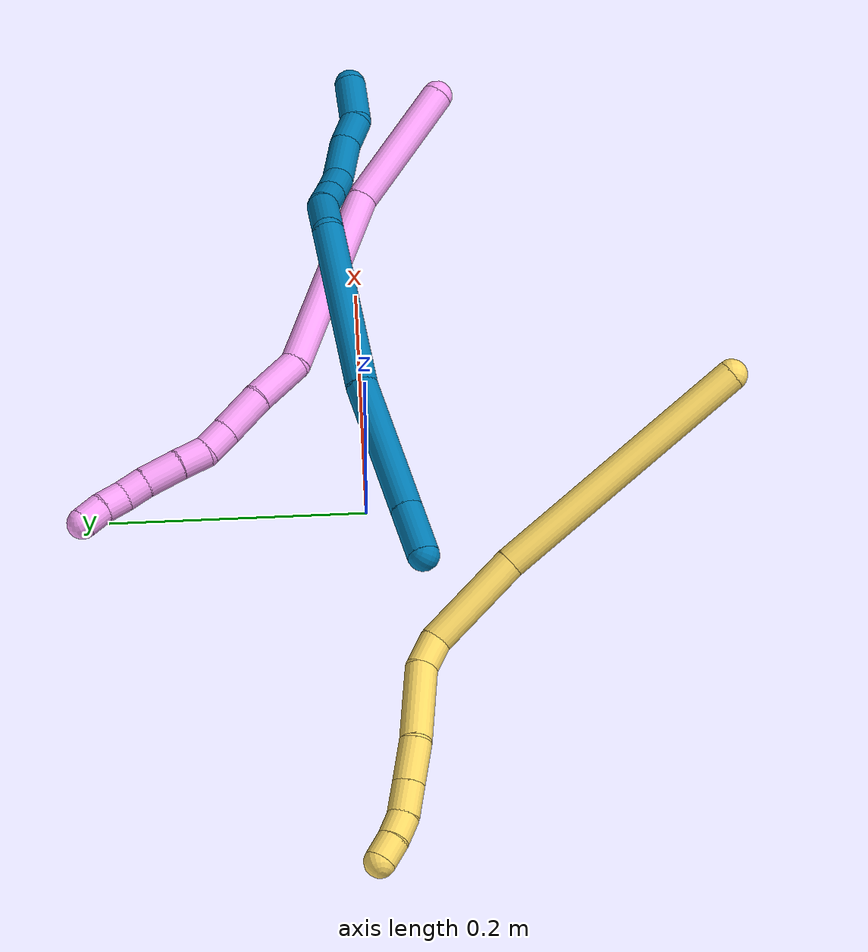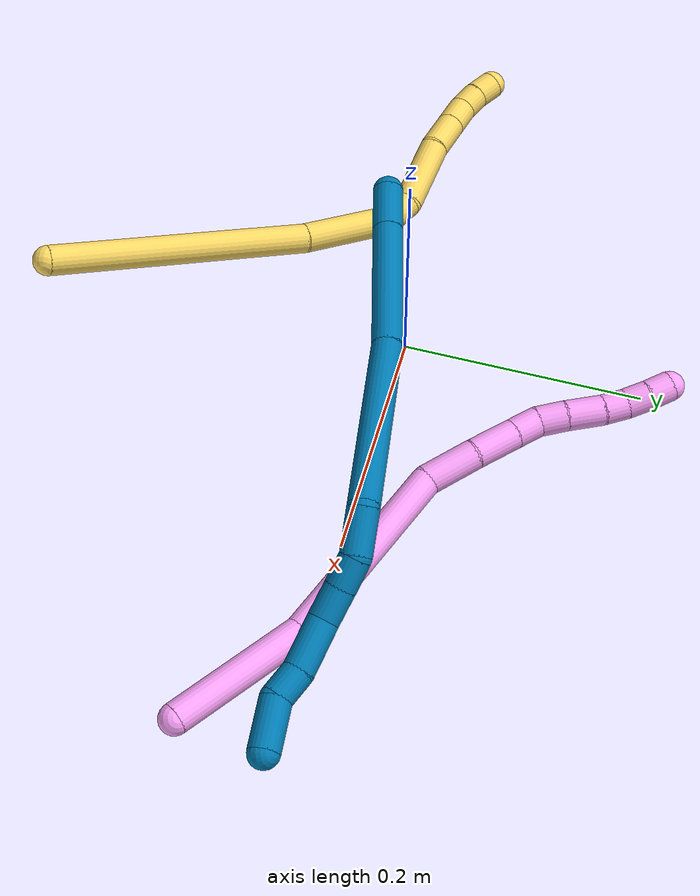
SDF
<sdf version="1.7">
 <world name="default">
  <model name="4">
   <static>0</static>
   <link name="4">
    <collision name="collision-cylinder-e_1_1_4">
     <pose>-0.050092 0.027855 0.001333 -1.52298 -1.06282 1.02152</pose>
     <geometry><cylinder><radius>0.0125</radius><length>0.114662</length></cylinder></geometry>
     <surface>
      <friction><ode><mu>1.16</mu><mu2>1.16</mu2><slip1>0</slip1><slip2>0</slip2></ode></friction>
      <contact><ode><kp>1e+06</kp><kd>1</kd><max_vel>0</max_vel><min_depth>0.001</min_depth></ode></contact>
     </surface>
    </collision>
    <visual name="visual-cylinder-e_1_1_4">
     <pose>-0.050092 0.027855 0.001333 -1.52298 -1.06282 1.02152</pose>
     <geometry><cylinder><radius>0.0125</radius><length>0.114662</length></cylinder></geometry>
     <material><ambient>1 0.65098 0.996078 1</ambient></material>
    </visual>
    <collision name="collision-cylinder-e_2_4_5">
     <pose>-0.159782 0.111758 0.009464 -1.45009 -0.81244 0.728255</pose>
     <geometry><cylinder><radius>0.0125</radius><length>0.16419</length></cylinder></geometry>
     <surface>
      <friction><ode><mu>1.16</mu><mu2>1.16</mu2><slip1>0</slip1><slip2>0</slip2></ode></friction>
      <contact><ode><kp>1e+06</kp><kd>1</kd><max_vel>0</max_vel><min_depth>0.001</min_depth></ode></contact>
     </surface>
    </collision>
    <visual name="visual-cylinder-e_2_4_5">
     <pose>-0.159782 0.111758 0.009464 -1.45009 -0.81244 0.728255</pose>
     <geometry><cylinder><radius>0.0125</radius><length>0.16419</length></cylinder></geometry>
     <material><ambient>1 0.65098 0.996078 1</ambient></material>
    </visual>
    <collision name="collision-cylinder-e_3_5_6">
     <pose>-0.239203 0.17693 0.012508 -1.96115 -1.10897 1.49237</pose>
     <geometry><cylinder><radius>0.0125</radius><length>0.044284</length></cylinder></geometry>
     <surface>
      <friction><ode><mu>1.16</mu><mu2>1.16</mu2><slip1>0</slip1><slip2>0</slip2></ode></friction>
      <contact><ode><kp>1e+06</kp><kd>1</kd><max_vel>0</max_vel><min_depth>0.001</min_depth></ode></contact>
     </surface>
    </collision>
    <visual name="visual-cylinder-e_3_5_6">
     <pose>-0.239203 0.17693 0.012508 -1.96115 -1.10897 1.49237</pose>
     <geometry><cylinder><radius>0.0125</radius><length>0.044284</length></cylinder></geometry>
     <material><ambient>1 0.65098 0.996078 1</ambient></material>
    </visual>
    <collision name="collision-cylinder-e_4_6_7">
     <pose>-0.276682 0.193521 0.007848 -1.69149 -1.16809 1.28184</pose>
     <geometry><cylinder><radius>0.0125</radius><length>0.038383</length></cylinder></geometry>
     <surface>
      <friction><ode><mu>1.16</mu><mu2>1.16</mu2><slip1>0</slip1><slip2>0</slip2></ode></friction>
      <contact><ode><kp>1e+06</kp><kd>1</kd><max_vel>0</max_vel><min_depth>0.001</min_depth></ode></contact>
     </surface>
    </collision>
    <visual name="visual-cylinder-e_4_6_7">
     <pose>-0.276682 0.193521 0.007848 -1.69149 -1.16809 1.28184</pose>
     <geometry><cylinder><radius>0.0125</radius><length>0.038383</length></cylinder></geometry>
     <material><ambient>1 0.65098 0.996078 1</ambient></material>
    </visual>
    <collision name="collision-cylinder-e_5_7_8">
     <pose>-0.305075 0.205552 0.006029 -1.76841 -1.16172 1.35052</pose>
     <geometry><cylinder><radius>0.0125</radius><length>0.023405</length></cylinder></geometry>
     <surface>
      <friction><ode><mu>1.16</mu><mu2>1.16</mu2><slip1>0</slip1><slip2>0</slip2></ode></friction>
      <contact><ode><kp>1e+06</kp><kd>1</kd><max_vel>0</max_vel><min_depth>0.001</min_depth></ode></contact>
     </surface>
    </collision>
    <visual name="visual-cylinder-e_5_7_8">
     <pose>-0.305075 0.205552 0.006029 -1.76841 -1.16172 1.35052</pose>
     <geometry><cylinder><radius>0.0125</radius><length>0.023405</length></cylinder></geometry>
     <material><ambient>1 0.65098 0.996078 1</ambient></material>
    </visual>
    <collision name="collision-cylinder-e_6_8_9">
     <pose>-0.32714 0.211582 0.001812 -2.72396 -1.26202 2.57705</pose>
     <geometry><cylinder><radius>0.0125</radius><length>0.023781</length></cylinder></geometry>
     <surface>
      <friction><ode><mu>1.16</mu><mu2>1.16</mu2><slip1>0</slip1><slip2>0</slip2></ode></friction>
      <contact><ode><kp>1e+06</kp><kd>1</kd><max_vel>0</max_vel><min_depth>0.001</min_depth></ode></contact>
     </surface>
    </collision>
    <visual name="visual-cylinder-e_6_8_9">
     <pose>-0.32714 0.211582 0.001812 -2.72396 -1.26202 2.57705</pose>
     <geometry><cylinder><radius>0.0125</radius><length>0.023781</length></cylinder></geometry>
     <material><ambient>1 0.65098 0.996078 1</ambient></material>
    </visual>
    <collision name="collision-cylinder-e_7_9_10">
     <pose>-0.353607 0.214353 -0.004687 -2.7537 -1.34656 2.65869</pose>
     <geometry><cylinder><radius>0.0125</radius><length>0.031055</length></cylinder></geometry>
     <surface>
      <friction><ode><mu>1.16</mu><mu2>1.16</mu2><slip1>0</slip1><slip2>0</slip2></ode></friction>
      <contact><ode><kp>1e+06</kp><kd>1</kd><max_vel>0</max_vel><min_depth>0.001</min_depth></ode></contact>
     </surface>
    </collision>
    <visual name="visual-cylinder-e_7_9_10">
     <pose>-0.353607 0.214353 -0.004687 -2.7537 -1.34656 2.65869</pose>
     <geometry><cylinder><radius>0.0125</radius><length>0.031055</length></cylinder></geometry>
     <material><ambient>1 0.65098 0.996078 1</ambient></material>
    </visual>
    <collision name="collision-cylinder-e_8_10_11">
     <pose>-0.378512 0.217587 -0.009635 -2.30832 -1.31013 2.09633</pose>
     <geometry><cylinder><radius>0.0125</radius><length>0.020217</length></cylinder></geometry>
     <surface>
      <friction><ode><mu>1.16</mu><mu2>1.16</mu2><slip1>0</slip1><slip2>0</slip2></ode></friction>
      <contact><ode><kp>1e+06</kp><kd>1</kd><max_vel>0</max_vel><min_depth>0.001</min_depth></ode></contact>
     </surface>
    </collision>
    <visual name="visual-cylinder-e_8_10_11">
     <pose>-0.378512 0.217587 -0.009635 -2.30832 -1.31013 2.09633</pose>
     <geometry><cylinder><radius>0.0125</radius><length>0.020217</length></cylinder></geometry>
     <material><ambient>1 0.65098 0.996078 1</ambient></material>
    </visual>
    <collision name="collision-cylinder-e_9_11_12">
     <pose>-0.397395 0.222141 -0.014559 -2.45018 -1.14648 2.12377</pose>
     <geometry><cylinder><radius>0.0125</radius><length>0.020005</length></cylinder></geometry>
     <surface>
      <friction><ode><mu>1.16</mu><mu2>1.16</mu2><slip1>0</slip1><slip2>0</slip2></ode></friction>
      <contact><ode><kp>1e+06</kp><kd>1</kd><max_vel>0</max_vel><min_depth>0.001</min_depth></ode></contact>
     </surface>
    </collision>
    <visual name="visual-cylinder-e_9_11_12">
     <pose>-0.397395 0.222141 -0.014559 -2.45018 -1.14648 2.12377</pose>
     <geometry><cylinder><radius>0.0125</radius><length>0.020005</length></cylinder></geometry>
     <material><ambient>1 0.65098 0.996078 1</ambient></material>
    </visual>
    <collision name="collision-cylinder-e_10_12_2">
     <pose>-0.415768 0.2281 -0.019567 -2.07437 -1.1808 1.69651</pose>
     <geometry><cylinder><radius>0.0125</radius><length>0.020017</length></cylinder></geometry>
     <surface>
      <friction><ode><mu>1.16</mu><mu2>1.16</mu2><slip1>0</slip1><slip2>0</slip2></ode></friction>
      <contact><ode><kp>1e+06</kp><kd>1</kd><max_vel>0</max_vel><min_depth>0.001</min_depth></ode></contact>
     </surface>
    </collision>
    <visual name="visual-cylinder-e_10_12_2">
     <pose>-0.415768 0.2281 -0.019567 -2.07437 -1.1808 1.69651</pose>
     <geometry><cylinder><radius>0.0125</radius><length>0.020017</length></cylinder></geometry>
     <material><ambient>1 0.65098 0.996078 1</ambient></material>
    </visual>
    <collision name="collision-sphere-2">
     <pose>-0.425025 0.231433 -0.021404 0 -0 0</pose>
     <geometry><sphere><radius>0.0125</radius></sphere></geometry>
     <surface>
      <friction><ode><mu>1.16</mu><mu2>1.16</mu2><slip1>0</slip1><slip2>0</slip2></ode></friction>
      <contact><ode><kp>1e+06</kp><kd>1</kd><max_vel>0</max_vel><min_depth>0.001</min_depth></ode></contact>
     </surface>
    </collision>
    <visual name="visual-sphere-2">
     <pose>-0.425025 0.231433 -0.021404 0 -0 0</pose>
     <geometry><sphere><radius>0.0125</radius></sphere></geometry>
     <material><ambient>1 0.65098 0.996078 1</ambient></material>
    </visual>
    <collision name="collision-sphere-12">
     <pose>-0.406511 0.224767 -0.017731 0 -0 0</pose>
     <geometry><sphere><radius>0.0125</radius></sphere></geometry>
     <surface>
      <friction><ode><mu>1.16</mu><mu2>1.16</mu2><slip1>0</slip1><slip2>0</slip2></ode></friction>
      <contact><ode><kp>1e+06</kp><kd>1</kd><max_vel>0</max_vel><min_depth>0.001</min_depth></ode></contact>
     </surface>
    </collision>
    <visual name="visual-sphere-12">
     <pose>-0.406511 0.224767 -0.017731 0 -0 0</pose>
     <geometry><sphere><radius>0.0125</radius></sphere></geometry>
     <material><ambient>1 0.65098 0.996078 1</ambient></material>
    </visual>
    <collision name="collision-sphere-11">
     <pose>-0.388279 0.219515 -0.011387 0 -0 0</pose>
     <geometry><sphere><radius>0.0125</radius></sphere></geometry>
     <surface>
      <friction><ode><mu>1.16</mu><mu2>1.16</mu2><slip1>0</slip1><slip2>0</slip2></ode></friction>
      <contact><ode><kp>1e+06</kp><kd>1</kd><max_vel>0</max_vel><min_depth>0.001</min_depth></ode></contact>
     </surface>
    </collision>
    <visual name="visual-sphere-11">
     <pose>-0.388279 0.219515 -0.011387 0 -0 0</pose>
     <geometry><sphere><radius>0.0125</radius></sphere></geometry>
     <material><ambient>1 0.65098 0.996078 1</ambient></material>
    </visual>
    <collision name="collision-sphere-10">
     <pose>-0.368746 0.215659 -0.007883 0 -0 0</pose>
     <geometry><sphere><radius>0.0125</radius></sphere></geometry>
     <surface>
      <friction><ode><mu>1.16</mu><mu2>1.16</mu2><slip1>0</slip1><slip2>0</slip2></ode></friction>
      <contact><ode><kp>1e+06</kp><kd>1</kd><max_vel>0</max_vel><min_depth>0.001</min_depth></ode></contact>
     </surface>
    </collision>
    <visual name="visual-sphere-10">
     <pose>-0.368746 0.215659 -0.007883 0 -0 0</pose>
     <geometry><sphere><radius>0.0125</radius></sphere></geometry>
     <material><ambient>1 0.65098 0.996078 1</ambient></material>
    </visual>
    <collision name="collision-sphere-9">
     <pose>-0.338468 0.213047 -0.001491 0 -0 0</pose>
     <geometry><sphere><radius>0.0125</radius></sphere></geometry>
     <surface>
      <friction><ode><mu>1.16</mu><mu2>1.16</mu2><slip1>0</slip1><slip2>0</slip2></ode></friction>
      <contact><ode><kp>1e+06</kp><kd>1</kd><max_vel>0</max_vel><min_depth>0.001</min_depth></ode></contact>
     </surface>
    </collision>
    <visual name="visual-sphere-9">
     <pose>-0.338468 0.213047 -0.001491 0 -0 0</pose>
     <geometry><sphere><radius>0.0125</radius></sphere></geometry>
     <material><ambient>1 0.65098 0.996078 1</ambient></material>
    </visual>
    <collision name="collision-sphere-4">
     <pose>-0.100183 0.055709 0.002666 0 -0 0</pose>
     <geometry><sphere><radius>0.0125</radius></sphere></geometry>
     <surface>
      <friction><ode><mu>1.16</mu><mu2>1.16</mu2><slip1>0</slip1><slip2>0</slip2></ode></friction>
      <contact><ode><kp>1e+06</kp><kd>1</kd><max_vel>0</max_vel><min_depth>0.001</min_depth></ode></contact>
     </surface>
    </collision>
    <visual name="visual-sphere-4">
     <pose>-0.100183 0.055709 0.002666 0 -0 0</pose>
     <geometry><sphere><radius>0.0125</radius></sphere></geometry>
     <material><ambient>1 0.65098 0.996078 1</ambient></material>
    </visual>
    <collision name="collision-sphere-1">
     <geometry><sphere><radius>0.0125</radius></sphere></geometry>
     <surface>
      <friction><ode><mu>1.16</mu><mu2>1.16</mu2><slip1>0</slip1><slip2>0</slip2></ode></friction>
      <contact><ode><kp>1e+06</kp><kd>1</kd><max_vel>0</max_vel><min_depth>0.001</min_depth></ode></contact>
     </surface>
    </collision>
    <visual name="visual-sphere-1">
     <geometry><sphere><radius>0.0125</radius></sphere></geometry>
     <material><ambient>1 0.65098 0.996078 1</ambient></material>
    </visual>
    <collision name="collision-sphere-8">
     <pose>-0.315812 0.210116 0.005115 0 -0 0</pose>
     <geometry><sphere><radius>0.0125</radius></sphere></geometry>
     <surface>
      <friction><ode><mu>1.16</mu><mu2>1.16</mu2><slip1>0</slip1><slip2>0</slip2></ode></friction>
      <contact><ode><kp>1e+06</kp><kd>1</kd><max_vel>0</max_vel><min_depth>0.001</min_depth></ode></contact>
     </surface>
    </collision>
    <visual name="visual-sphere-8">
     <pose>-0.315812 0.210116 0.005115 0 -0 0</pose>
     <geometry><sphere><radius>0.0125</radius></sphere></geometry>
     <material><ambient>1 0.65098 0.996078 1</ambient></material>
    </visual>
    <collision name="collision-sphere-5">
     <pose>-0.21938 0.167806 0.016263 0 -0 0</pose>
     <geometry><sphere><radius>0.0125</radius></sphere></geometry>
     <surface>
      <friction><ode><mu>1.16</mu><mu2>1.16</mu2><slip1>0</slip1><slip2>0</slip2></ode></friction>
      <contact><ode><kp>1e+06</kp><kd>1</kd><max_vel>0</max_vel><min_depth>0.001</min_depth></ode></contact>
     </surface>
    </collision>
    <visual name="visual-sphere-5">
     <pose>-0.21938 0.167806 0.016263 0 -0 0</pose>
     <geometry><sphere><radius>0.0125</radius></sphere></geometry>
     <material><ambient>1 0.65098 0.996078 1</ambient></material>
    </visual>
    <collision name="collision-sphere-6">
     <pose>-0.259025 0.186054 0.008754 0 -0 0</pose>
     <geometry><sphere><radius>0.0125</radius></sphere></geometry>
     <surface>
      <friction><ode><mu>1.16</mu><mu2>1.16</mu2><slip1>0</slip1><slip2>0</slip2></ode></friction>
      <contact><ode><kp>1e+06</kp><kd>1</kd><max_vel>0</max_vel><min_depth>0.001</min_depth></ode></contact>
     </surface>
    </collision>
    <visual name="visual-sphere-6">
     <pose>-0.259025 0.186054 0.008754 0 -0 0</pose>
     <geometry><sphere><radius>0.0125</radius></sphere></geometry>
     <material><ambient>1 0.65098 0.996078 1</ambient></material>
    </visual>
    <collision name="collision-sphere-7">
     <pose>-0.294338 0.200987 0.006943 0 -0 0</pose>
     <geometry><sphere><radius>0.0125</radius></sphere></geometry>
     <surface>
      <friction><ode><mu>1.16</mu><mu2>1.16</mu2><slip1>0</slip1><slip2>0</slip2></ode></friction>
      <contact><ode><kp>1e+06</kp><kd>1</kd><max_vel>0</max_vel><min_depth>0.001</min_depth></ode></contact>
     </surface>
    </collision>
    <visual name="visual-sphere-7">
     <pose>-0.294338 0.200987 0.006943 0 -0 0</pose>
     <geometry><sphere><radius>0.0125</radius></sphere></geometry>
     <material><ambient>1 0.65098 0.996078 1</ambient></material>
    </visual>
    <inertial>
     <pose>-0.206034 0.133429 0.003446 0 -0 0</pose>
     <mass>0.5</mass>
     <inertia>
      <ixx>0.000427</ixx>
      <ixy>0</ixy>
      <ixz>0</ixz>
      <iyy>0.000591</iyy>
      <iyz>0</iyz>
      <izz>8.2e-05</izz>
     </inertia>
    </inertial>
   </link>
   <pose>0.377894 -0.073473 0.018246 2.71537 -0.26913 -1.08173</pose>
  </model>
  <model name="5">
   <static>0</static>
   <link name="5">
    <collision name="collision-cylinder-e_1_1_4">
     <pose>-0.085945 0.051715 0.050199 -0.800268 -0.87297 0.389604</pose>
     <geometry><cylinder><radius>0.0125</radius><length>0.22433</length></cylinder></geometry>
     <surface>
      <friction><ode><mu>1.16</mu><mu2>1.16</mu2><slip1>0</slip1><slip2>0</slip2></ode></friction>
      <contact><ode><kp>1e+06</kp><kd>1</kd><max_vel>0</max_vel><min_depth>0.001</min_depth></ode></contact>
     </surface>
    </collision>
    <visual name="visual-cylinder-e_1_1_4">
     <pose>-0.085945 0.051715 0.050199 -0.800268 -0.87297 0.389604</pose>
     <geometry><cylinder><radius>0.0125</radius><length>0.22433</length></cylinder></geometry>
     <material><ambient>1 0.858824 0.4 1</ambient></material>
    </visual>
    <collision name="collision-cylinder-e_2_4_5">
     <pose>-0.201522 0.120945 0.123482 -0.649099 -0.796579 0.281269</pose>
     <geometry><cylinder><radius>0.0125</radius><length>0.08289</length></cylinder></geometry>
     <surface>
      <friction><ode><mu>1.16</mu><mu2>1.16</mu2><slip1>0</slip1><slip2>0</slip2></ode></friction>
      <contact><ode><kp>1e+06</kp><kd>1</kd><max_vel>0</max_vel><min_depth>0.001</min_depth></ode></contact>
     </surface>
    </collision>
    <visual name="visual-cylinder-e_2_4_5">
     <pose>-0.201522 0.120945 0.123482 -0.649099 -0.796579 0.281269</pose>
     <geometry><cylinder><radius>0.0125</radius><length>0.08289</length></cylinder></geometry>
     <material><ambient>1 0.858824 0.4 1</ambient></material>
    </visual>
    <collision name="collision-cylinder-e_3_5_6">
     <pose>-0.236361 0.143024 0.157709 -0.388661 -0.408109 0.08141</pose>
     <geometry><cylinder><radius>0.0125</radius><length>0.026239</length></cylinder></geometry>
     <surface>
      <friction><ode><mu>1.16</mu><mu2>1.16</mu2><slip1>0</slip1><slip2>0</slip2></ode></friction>
      <contact><ode><kp>1e+06</kp><kd>1</kd><max_vel>0</max_vel><min_depth>0.001</min_depth></ode></contact>
     </surface>
    </collision>
    <visual name="visual-cylinder-e_3_5_6">
     <pose>-0.236361 0.143024 0.157709 -0.388661 -0.408109 0.08141</pose>
     <geometry><cylinder><radius>0.0125</radius><length>0.026239</length></cylinder></geometry>
     <material><ambient>1 0.858824 0.4 1</ambient></material>
    </visual>
    <collision name="collision-cylinder-e_4_6_7">
     <pose>-0.246846 0.151169 0.200616 -0.112298 -0.163643 0.009219</pose>
     <geometry><cylinder><radius>0.0125</radius><length>0.064795</length></cylinder></geometry>
     <surface>
      <friction><ode><mu>1.16</mu><mu2>1.16</mu2><slip1>0</slip1><slip2>0</slip2></ode></friction>
      <contact><ode><kp>1e+06</kp><kd>1</kd><max_vel>0</max_vel><min_depth>0.001</min_depth></ode></contact>
     </surface>
    </collision>
    <visual name="visual-cylinder-e_4_6_7">
     <pose>-0.246846 0.151169 0.200616 -0.112298 -0.163643 0.009219</pose>
     <geometry><cylinder><radius>0.0125</radius><length>0.064795</length></cylinder></geometry>
     <material><ambient>1 0.858824 0.4 1</ambient></material>
    </visual>
    <collision name="collision-cylinder-e_5_7_8">
     <pose>-0.258366 0.156008 0.248591 -0.077416 -0.366558 0.014357</pose>
     <geometry><cylinder><radius>0.0125</radius><length>0.034835</length></cylinder></geometry>
     <surface>
      <friction><ode><mu>1.16</mu><mu2>1.16</mu2><slip1>0</slip1><slip2>0</slip2></ode></friction>
      <contact><ode><kp>1e+06</kp><kd>1</kd><max_vel>0</max_vel><min_depth>0.001</min_depth></ode></contact>
     </surface>
    </collision>
    <visual name="visual-cylinder-e_5_7_8">
     <pose>-0.258366 0.156008 0.248591 -0.077416 -0.366558 0.014357</pose>
     <geometry><cylinder><radius>0.0125</radius><length>0.034835</length></cylinder></geometry>
     <material><ambient>1 0.858824 0.4 1</ambient></material>
    </visual>
    <collision name="collision-cylinder-e_6_8_9">
     <pose>-0.26929 0.15823 0.276967 -0.079066 -0.366341 0.014654</pose>
     <geometry><cylinder><radius>0.0125</radius><length>0.026139</length></cylinder></geometry>
     <surface>
      <friction><ode><mu>1.16</mu><mu2>1.16</mu2><slip1>0</slip1><slip2>0</slip2></ode></friction>
      <contact><ode><kp>1e+06</kp><kd>1</kd><max_vel>0</max_vel><min_depth>0.001</min_depth></ode></contact>
     </surface>
    </collision>
    <visual name="visual-cylinder-e_6_8_9">
     <pose>-0.26929 0.15823 0.276967 -0.079066 -0.366341 0.014654</pose>
     <geometry><cylinder><radius>0.0125</radius><length>0.026139</length></cylinder></geometry>
     <material><ambient>1 0.858824 0.4 1</ambient></material>
    </visual>
    <collision name="collision-cylinder-e_7_9_10">
     <pose>-0.277627 0.16249 0.298167 -0.349816 -0.363201 0.064875</pose>
     <geometry><cylinder><radius>0.0125</radius><length>0.020579</length></cylinder></geometry>
     <surface>
      <friction><ode><mu>1.16</mu><mu2>1.16</mu2><slip1>0</slip1><slip2>0</slip2></ode></friction>
      <contact><ode><kp>1e+06</kp><kd>1</kd><max_vel>0</max_vel><min_depth>0.001</min_depth></ode></contact>
     </surface>
    </collision>
    <visual name="visual-cylinder-e_7_9_10">
     <pose>-0.277627 0.16249 0.298167 -0.349816 -0.363201 0.064875</pose>
     <geometry><cylinder><radius>0.0125</radius><length>0.020579</length></cylinder></geometry>
     <material><ambient>1 0.858824 0.4 1</ambient></material>
    </visual>
    <collision name="collision-cylinder-e_8_10_2">
     <pose>-0.285848 0.169702 0.315313 -0.449843 -0.469108 0.109232</pose>
     <geometry><cylinder><radius>0.0125</radius><length>0.020194</length></cylinder></geometry>
     <surface>
      <friction><ode><mu>1.16</mu><mu2>1.16</mu2><slip1>0</slip1><slip2>0</slip2></ode></friction>
      <contact><ode><kp>1e+06</kp><kd>1</kd><max_vel>0</max_vel><min_depth>0.001</min_depth></ode></contact>
     </surface>
    </collision>
    <visual name="visual-cylinder-e_8_10_2">
     <pose>-0.285848 0.169702 0.315313 -0.449843 -0.469108 0.109232</pose>
     <geometry><cylinder><radius>0.0125</radius><length>0.020194</length></cylinder></geometry>
     <material><ambient>1 0.858824 0.4 1</ambient></material>
    </visual>
    <collision name="collision-sphere-2">
     <pose>-0.290412 0.173619 0.323423 0 -0 0</pose>
     <geometry><sphere><radius>0.0125</radius></sphere></geometry>
     <surface>
      <friction><ode><mu>1.16</mu><mu2>1.16</mu2><slip1>0</slip1><slip2>0</slip2></ode></friction>
      <contact><ode><kp>1e+06</kp><kd>1</kd><max_vel>0</max_vel><min_depth>0.001</min_depth></ode></contact>
     </surface>
    </collision>
    <visual name="visual-sphere-2">
     <pose>-0.290412 0.173619 0.323423 0 -0 0</pose>
     <geometry><sphere><radius>0.0125</radius></sphere></geometry>
     <material><ambient>1 0.858824 0.4 1</ambient></material>
    </visual>
    <collision name="collision-sphere-10">
     <pose>-0.281283 0.165786 0.307203 0 -0 0</pose>
     <geometry><sphere><radius>0.0125</radius></sphere></geometry>
     <surface>
      <friction><ode><mu>1.16</mu><mu2>1.16</mu2><slip1>0</slip1><slip2>0</slip2></ode></friction>
      <contact><ode><kp>1e+06</kp><kd>1</kd><max_vel>0</max_vel><min_depth>0.001</min_depth></ode></contact>
     </surface>
    </collision>
    <visual name="visual-sphere-10">
     <pose>-0.281283 0.165786 0.307203 0 -0 0</pose>
     <geometry><sphere><radius>0.0125</radius></sphere></geometry>
     <material><ambient>1 0.858824 0.4 1</ambient></material>
    </visual>
    <collision name="collision-sphere-9">
     <pose>-0.273972 0.159194 0.289131 0 -0 0</pose>
     <geometry><sphere><radius>0.0125</radius></sphere></geometry>
     <surface>
      <friction><ode><mu>1.16</mu><mu2>1.16</mu2><slip1>0</slip1><slip2>0</slip2></ode></friction>
      <contact><ode><kp>1e+06</kp><kd>1</kd><max_vel>0</max_vel><min_depth>0.001</min_depth></ode></contact>
     </surface>
    </collision>
    <visual name="visual-sphere-9">
     <pose>-0.273972 0.159194 0.289131 0 -0 0</pose>
     <geometry><sphere><radius>0.0125</radius></sphere></geometry>
     <material><ambient>1 0.858824 0.4 1</ambient></material>
    </visual>
    <collision name="collision-sphere-4">
     <pose>-0.17189 0.103429 0.100398 0 -0 0</pose>
     <geometry><sphere><radius>0.0125</radius></sphere></geometry>
     <surface>
      <friction><ode><mu>1.16</mu><mu2>1.16</mu2><slip1>0</slip1><slip2>0</slip2></ode></friction>
      <contact><ode><kp>1e+06</kp><kd>1</kd><max_vel>0</max_vel><min_depth>0.001</min_depth></ode></contact>
     </surface>
    </collision>
    <visual name="visual-sphere-4">
     <pose>-0.17189 0.103429 0.100398 0 -0 0</pose>
     <geometry><sphere><radius>0.0125</radius></sphere></geometry>
     <material><ambient>1 0.858824 0.4 1</ambient></material>
    </visual>
    <collision name="collision-sphere-1">
     <geometry><sphere><radius>0.0125</radius></sphere></geometry>
     <surface>
      <friction><ode><mu>1.16</mu><mu2>1.16</mu2><slip1>0</slip1><slip2>0</slip2></ode></friction>
      <contact><ode><kp>1e+06</kp><kd>1</kd><max_vel>0</max_vel><min_depth>0.001</min_depth></ode></contact>
     </surface>
    </collision>
    <visual name="visual-sphere-1">
     <geometry><sphere><radius>0.0125</radius></sphere></geometry>
     <material><ambient>1 0.858824 0.4 1</ambient></material>
    </visual>
    <collision name="collision-sphere-8">
     <pose>-0.264609 0.157266 0.264803 0 -0 0</pose>
     <geometry><sphere><radius>0.0125</radius></sphere></geometry>
     <surface>
      <friction><ode><mu>1.16</mu><mu2>1.16</mu2><slip1>0</slip1><slip2>0</slip2></ode></friction>
      <contact><ode><kp>1e+06</kp><kd>1</kd><max_vel>0</max_vel><min_depth>0.001</min_depth></ode></contact>
     </surface>
    </collision>
    <visual name="visual-sphere-8">
     <pose>-0.264609 0.157266 0.264803 0 -0 0</pose>
     <geometry><sphere><radius>0.0125</radius></sphere></geometry>
     <material><ambient>1 0.858824 0.4 1</ambient></material>
    </visual>
    <collision name="collision-sphere-5">
     <pose>-0.231154 0.13846 0.146566 0 -0 0</pose>
     <geometry><sphere><radius>0.0125</radius></sphere></geometry>
     <surface>
      <friction><ode><mu>1.16</mu><mu2>1.16</mu2><slip1>0</slip1><slip2>0</slip2></ode></friction>
      <contact><ode><kp>1e+06</kp><kd>1</kd><max_vel>0</max_vel><min_depth>0.001</min_depth></ode></contact>
     </surface>
    </collision>
    <visual name="visual-sphere-5">
     <pose>-0.231154 0.13846 0.146566 0 -0 0</pose>
     <geometry><sphere><radius>0.0125</radius></sphere></geometry>
     <material><ambient>1 0.858824 0.4 1</ambient></material>
    </visual>
    <collision name="collision-sphere-6">
     <pose>-0.241568 0.147587 0.168853 0 -0 0</pose>
     <geometry><sphere><radius>0.0125</radius></sphere></geometry>
     <surface>
      <friction><ode><mu>1.16</mu><mu2>1.16</mu2><slip1>0</slip1><slip2>0</slip2></ode></friction>
      <contact><ode><kp>1e+06</kp><kd>1</kd><max_vel>0</max_vel><min_depth>0.001</min_depth></ode></contact>
     </surface>
    </collision>
    <visual name="visual-sphere-6">
     <pose>-0.241568 0.147587 0.168853 0 -0 0</pose>
     <geometry><sphere><radius>0.0125</radius></sphere></geometry>
     <material><ambient>1 0.858824 0.4 1</ambient></material>
    </visual>
    <collision name="collision-sphere-7">
     <pose>-0.252124 0.154751 0.232379 0 -0 0</pose>
     <geometry><sphere><radius>0.0125</radius></sphere></geometry>
     <surface>
      <friction><ode><mu>1.16</mu><mu2>1.16</mu2><slip1>0</slip1><slip2>0</slip2></ode></friction>
      <contact><ode><kp>1e+06</kp><kd>1</kd><max_vel>0</max_vel><min_depth>0.001</min_depth></ode></contact>
     </surface>
    </collision>
    <visual name="visual-sphere-7">
     <pose>-0.252124 0.154751 0.232379 0 -0 0</pose>
     <geometry><sphere><radius>0.0125</radius></sphere></geometry>
     <material><ambient>1 0.858824 0.4 1</ambient></material>
    </visual>
    <inertial>
     <pose>-0.17141 0.103031 0.134072 0 -0 0</pose>
     <mass>0.5</mass>
     <inertia>
      <ixx>0.000855</ixx>
      <ixy>0</ixy>
      <ixz>0</ixz>
      <iyy>0.001148</iyy>
      <iyz>0</iyz>
      <izz>0.000334</izz>
     </inertia>
    </inertial>
   </link>
   <pose>0.058478 -0.283932 0.091373 1.31562 -0.915751 -1.29353</pose>
  </model>
  <model name="9">
   <static>0</static>
   <link name="9">
    <collision name="collision-cylinder-e_1_1_4">
     <pose>0.020174 0.000911 0.005357 -0.168515 1.30767 -0.129254</pose>
     <geometry><cylinder><radius>0.0125</radius><length>0.041786</length></cylinder></geometry>
     <surface>
      <friction><ode><mu>1.16</mu><mu2>1.16</mu2><slip1>0</slip1><slip2>0</slip2></ode></friction>
      <contact><ode><kp>1e+06</kp><kd>1</kd><max_vel>0</max_vel><min_depth>0.001</min_depth></ode></contact>
     </surface>
    </collision>
    <visual name="visual-cylinder-e_1_1_4">
     <pose>0.020174 0.000911 0.005357 -0.168515 1.30767 -0.129254</pose>
     <geometry><cylinder><radius>0.0125</radius><length>0.041786</length></cylinder></geometry>
     <material><ambient>0 0.490196 0.709804 1</ambient></material>
    </visual>
    <collision name="collision-cylinder-e_2_4_5">
     <pose>0.095892 0.004145 0.02553 -0.155464 1.3071 -0.119157</pose>
     <geometry><cylinder><radius>0.0125</radius><length>0.115067</length></cylinder></geometry>
     <surface>
      <friction><ode><mu>1.16</mu><mu2>1.16</mu2><slip1>0</slip1><slip2>0</slip2></ode></friction>
      <contact><ode><kp>1e+06</kp><kd>1</kd><max_vel>0</max_vel><min_depth>0.001</min_depth></ode></contact>
     </surface>
    </collision>
    <visual name="visual-cylinder-e_2_4_5">
     <pose>0.095892 0.004145 0.02553 -0.155464 1.3071 -0.119157</pose>
     <geometry><cylinder><radius>0.0125</radius><length>0.115067</length></cylinder></geometry>
     <material><ambient>0 0.490196 0.709804 1</ambient></material>
    </visual>
    <collision name="collision-cylinder-e_3_5_6">
     <pose>0.223136 0.003807 0.053 0.207137 1.39235 0.173306</pose>
     <geometry><cylinder><radius>0.0125</radius><length>0.145712</length></cylinder></geometry>
     <surface>
      <friction><ode><mu>1.16</mu><mu2>1.16</mu2><slip1>0</slip1><slip2>0</slip2></ode></friction>
      <contact><ode><kp>1e+06</kp><kd>1</kd><max_vel>0</max_vel><min_depth>0.001</min_depth></ode></contact>
     </surface>
    </collision>
    <visual name="visual-cylinder-e_3_5_6">
     <pose>0.223136 0.003807 0.053 0.207137 1.39235 0.173306</pose>
     <geometry><cylinder><radius>0.0125</radius><length>0.145712</length></cylinder></geometry>
     <material><ambient>0 0.490196 0.709804 1</ambient></material>
    </visual>
    <collision name="collision-cylinder-e_4_6_7">
     <pose>0.312584 0.006161 0.063059 -2.04859 1.26282 -1.75389</pose>
     <geometry><cylinder><radius>0.0125</radius><length>0.03725</length></cylinder></geometry>
     <surface>
      <friction><ode><mu>1.16</mu><mu2>1.16</mu2><slip1>0</slip1><slip2>0</slip2></ode></friction>
      <contact><ode><kp>1e+06</kp><kd>1</kd><max_vel>0</max_vel><min_depth>0.001</min_depth></ode></contact>
     </surface>
    </collision>
    <visual name="visual-cylinder-e_4_6_7">
     <pose>0.312584 0.006161 0.063059 -2.04859 1.26282 -1.75389</pose>
     <geometry><cylinder><radius>0.0125</radius><length>0.03725</length></cylinder></geometry>
     <material><ambient>0 0.490196 0.709804 1</ambient></material>
    </visual>
    <collision name="collision-cylinder-e_5_7_8">
     <pose>0.341081 0.013361 0.054373 -2.797 1.02885 -2.54421</pose>
     <geometry><cylinder><radius>0.0125</radius><length>0.025092</length></cylinder></geometry>
     <surface>
      <friction><ode><mu>1.16</mu><mu2>1.16</mu2><slip1>0</slip1><slip2>0</slip2></ode></friction>
      <contact><ode><kp>1e+06</kp><kd>1</kd><max_vel>0</max_vel><min_depth>0.001</min_depth></ode></contact>
     </surface>
    </collision>
    <visual name="visual-cylinder-e_5_7_8">
     <pose>0.341081 0.013361 0.054373 -2.797 1.02885 -2.54421</pose>
     <geometry><cylinder><radius>0.0125</radius><length>0.025092</length></cylinder></geometry>
     <material><ambient>0 0.490196 0.709804 1</ambient></material>
    </visual>
    <collision name="collision-cylinder-e_6_8_9">
     <pose>0.363914 0.017104 0.042212 -2.89046 1.09248 -2.73215</pose>
     <geometry><cylinder><radius>0.0125</radius><length>0.027227</length></cylinder></geometry>
     <surface>
      <friction><ode><mu>1.16</mu><mu2>1.16</mu2><slip1>0</slip1><slip2>0</slip2></ode></friction>
      <contact><ode><kp>1e+06</kp><kd>1</kd><max_vel>0</max_vel><min_depth>0.001</min_depth></ode></contact>
     </surface>
    </collision>
    <visual name="visual-cylinder-e_6_8_9">
     <pose>0.363914 0.017104 0.042212 -2.89046 1.09248 -2.73215</pose>
     <geometry><cylinder><radius>0.0125</radius><length>0.027227</length></cylinder></geometry>
     <material><ambient>0 0.490196 0.709804 1</ambient></material>
    </visual>
    <collision name="collision-cylinder-e_7_9_10">
     <pose>0.396429 0.017264 0.031684 2.83795 1.34596 2.76232</pose>
     <geometry><cylinder><radius>0.0125</radius><length>0.041914</length></cylinder></geometry>
     <surface>
      <friction><ode><mu>1.16</mu><mu2>1.16</mu2><slip1>0</slip1><slip2>0</slip2></ode></friction>
      <contact><ode><kp>1e+06</kp><kd>1</kd><max_vel>0</max_vel><min_depth>0.001</min_depth></ode></contact>
     </surface>
    </collision>
    <visual name="visual-cylinder-e_7_9_10">
     <pose>0.396429 0.017264 0.031684 2.83795 1.34596 2.76232</pose>
     <geometry><cylinder><radius>0.0125</radius><length>0.041914</length></cylinder></geometry>
     <material><ambient>0 0.490196 0.709804 1</ambient></material>
    </visual>
    <collision name="collision-cylinder-e_8_10_11">
     <pose>0.428578 0.011796 0.023938 2.25005 1.15088 1.87177</pose>
     <geometry><cylinder><radius>0.0125</radius><length>0.025669</length></cylinder></geometry>
     <surface>
      <friction><ode><mu>1.16</mu><mu2>1.16</mu2><slip1>0</slip1><slip2>0</slip2></ode></friction>
      <contact><ode><kp>1e+06</kp><kd>1</kd><max_vel>0</max_vel><min_depth>0.001</min_depth></ode></contact>
     </surface>
    </collision>
    <visual name="visual-cylinder-e_8_10_11">
     <pose>0.428578 0.011796 0.023938 2.25005 1.15088 1.87177</pose>
     <geometry><cylinder><radius>0.0125</radius><length>0.025669</length></cylinder></geometry>
     <material><ambient>0 0.490196 0.709804 1</ambient></material>
    </visual>
    <collision name="collision-cylinder-e_9_11_2">
     <pose>0.460414 0.007891 0.021651 -0.164437 1.52049 -0.156399</pose>
     <geometry><cylinder><radius>0.0125</radius><length>0.040284</length></cylinder></geometry>
     <surface>
      <friction><ode><mu>1.16</mu><mu2>1.16</mu2><slip1>0</slip1><slip2>0</slip2></ode></friction>
      <contact><ode><kp>1e+06</kp><kd>1</kd><max_vel>0</max_vel><min_depth>0.001</min_depth></ode></contact>
     </surface>
    </collision>
    <visual name="visual-cylinder-e_9_11_2">
     <pose>0.460414 0.007891 0.021651 -0.164437 1.52049 -0.156399</pose>
     <geometry><cylinder><radius>0.0125</radius><length>0.040284</length></cylinder></geometry>
     <material><ambient>0 0.490196 0.709804 1</ambient></material>
    </visual>
    <collision name="collision-sphere-2">
     <pose>0.480531 0.008056 0.02265 0 -0 0</pose>
     <geometry><sphere><radius>0.0125</radius></sphere></geometry>
     <surface>
      <friction><ode><mu>1.16</mu><mu2>1.16</mu2><slip1>0</slip1><slip2>0</slip2></ode></friction>
      <contact><ode><kp>1e+06</kp><kd>1</kd><max_vel>0</max_vel><min_depth>0.001</min_depth></ode></contact>
     </surface>
    </collision>
    <visual name="visual-sphere-2">
     <pose>0.480531 0.008056 0.02265 0 -0 0</pose>
     <geometry><sphere><radius>0.0125</radius></sphere></geometry>
     <material><ambient>0 0.490196 0.709804 1</ambient></material>
    </visual>
    <collision name="collision-sphere-11">
     <pose>0.440298 0.007725 0.020651 0 -0 0</pose>
     <geometry><sphere><radius>0.0125</radius></sphere></geometry>
     <surface>
      <friction><ode><mu>1.16</mu><mu2>1.16</mu2><slip1>0</slip1><slip2>0</slip2></ode></friction>
      <contact><ode><kp>1e+06</kp><kd>1</kd><max_vel>0</max_vel><min_depth>0.001</min_depth></ode></contact>
     </surface>
    </collision>
    <visual name="visual-sphere-11">
     <pose>0.440298 0.007725 0.020651 0 -0 0</pose>
     <geometry><sphere><radius>0.0125</radius></sphere></geometry>
     <material><ambient>0 0.490196 0.709804 1</ambient></material>
    </visual>
    <collision name="collision-sphere-10">
     <pose>0.416859 0.015867 0.027226 0 -0 0</pose>
     <geometry><sphere><radius>0.0125</radius></sphere></geometry>
     <surface>
      <friction><ode><mu>1.16</mu><mu2>1.16</mu2><slip1>0</slip1><slip2>0</slip2></ode></friction>
      <contact><ode><kp>1e+06</kp><kd>1</kd><max_vel>0</max_vel><min_depth>0.001</min_depth></ode></contact>
     </surface>
    </collision>
    <visual name="visual-sphere-10">
     <pose>0.416859 0.015867 0.027226 0 -0 0</pose>
     <geometry><sphere><radius>0.0125</radius></sphere></geometry>
     <material><ambient>0 0.490196 0.709804 1</ambient></material>
    </visual>
    <collision name="collision-sphere-9">
     <pose>0.376 0.018661 0.036143 0 -0 0</pose>
     <geometry><sphere><radius>0.0125</radius></sphere></geometry>
     <surface>
      <friction><ode><mu>1.16</mu><mu2>1.16</mu2><slip1>0</slip1><slip2>0</slip2></ode></friction>
      <contact><ode><kp>1e+06</kp><kd>1</kd><max_vel>0</max_vel><min_depth>0.001</min_depth></ode></contact>
     </surface>
    </collision>
    <visual name="visual-sphere-9">
     <pose>0.376 0.018661 0.036143 0 -0 0</pose>
     <geometry><sphere><radius>0.0125</radius></sphere></geometry>
     <material><ambient>0 0.490196 0.709804 1</ambient></material>
    </visual>
    <collision name="collision-sphere-4">
     <pose>0.040348 0.001823 0.010715 0 -0 0</pose>
     <geometry><sphere><radius>0.0125</radius></sphere></geometry>
     <surface>
      <friction><ode><mu>1.16</mu><mu2>1.16</mu2><slip1>0</slip1><slip2>0</slip2></ode></friction>
      <contact><ode><kp>1e+06</kp><kd>1</kd><max_vel>0</max_vel><min_depth>0.001</min_depth></ode></contact>
     </surface>
    </collision>
    <visual name="visual-sphere-4">
     <pose>0.040348 0.001823 0.010715 0 -0 0</pose>
     <geometry><sphere><radius>0.0125</radius></sphere></geometry>
     <material><ambient>0 0.490196 0.709804 1</ambient></material>
    </visual>
    <collision name="collision-sphere-1">
     <geometry><sphere><radius>0.0125</radius></sphere></geometry>
     <surface>
      <friction><ode><mu>1.16</mu><mu2>1.16</mu2><slip1>0</slip1><slip2>0</slip2></ode></friction>
      <contact><ode><kp>1e+06</kp><kd>1</kd><max_vel>0</max_vel><min_depth>0.001</min_depth></ode></contact>
     </surface>
    </collision>
    <visual name="visual-sphere-1">
     <geometry><sphere><radius>0.0125</radius></sphere></geometry>
     <material><ambient>0 0.490196 0.709804 1</ambient></material>
    </visual>
    <collision name="collision-sphere-8">
     <pose>0.351829 0.015547 0.048282 0 -0 0</pose>
     <geometry><sphere><radius>0.0125</radius></sphere></geometry>
     <surface>
      <friction><ode><mu>1.16</mu><mu2>1.16</mu2><slip1>0</slip1><slip2>0</slip2></ode></friction>
      <contact><ode><kp>1e+06</kp><kd>1</kd><max_vel>0</max_vel><min_depth>0.001</min_depth></ode></contact>
     </surface>
    </collision>
    <visual name="visual-sphere-8">
     <pose>0.351829 0.015547 0.048282 0 -0 0</pose>
     <geometry><sphere><radius>0.0125</radius></sphere></geometry>
     <material><ambient>0 0.490196 0.709804 1</ambient></material>
    </visual>
    <collision name="collision-sphere-5">
     <pose>0.151437 0.006467 0.040345 0 -0 0</pose>
     <geometry><sphere><radius>0.0125</radius></sphere></geometry>
     <surface>
      <friction><ode><mu>1.16</mu><mu2>1.16</mu2><slip1>0</slip1><slip2>0</slip2></ode></friction>
      <contact><ode><kp>1e+06</kp><kd>1</kd><max_vel>0</max_vel><min_depth>0.001</min_depth></ode></contact>
     </surface>
    </collision>
    <visual name="visual-sphere-5">
     <pose>0.151437 0.006467 0.040345 0 -0 0</pose>
     <geometry><sphere><radius>0.0125</radius></sphere></geometry>
     <material><ambient>0 0.490196 0.709804 1</ambient></material>
    </visual>
    <collision name="collision-sphere-6">
     <pose>0.294835 0.001148 0.065656 0 -0 0</pose>
     <geometry><sphere><radius>0.0125</radius></sphere></geometry>
     <surface>
      <friction><ode><mu>1.16</mu><mu2>1.16</mu2><slip1>0</slip1><slip2>0</slip2></ode></friction>
      <contact><ode><kp>1e+06</kp><kd>1</kd><max_vel>0</max_vel><min_depth>0.001</min_depth></ode></contact>
     </surface>
    </collision>
    <visual name="visual-sphere-6">
     <pose>0.294835 0.001148 0.065656 0 -0 0</pose>
     <geometry><sphere><radius>0.0125</radius></sphere></geometry>
     <material><ambient>0 0.490196 0.709804 1</ambient></material>
    </visual>
    <collision name="collision-sphere-7">
     <pose>0.330332 0.011175 0.060463 0 -0 0</pose>
     <geometry><sphere><radius>0.0125</radius></sphere></geometry>
     <surface>
      <friction><ode><mu>1.16</mu><mu2>1.16</mu2><slip1>0</slip1><slip2>0</slip2></ode></friction>
      <contact><ode><kp>1e+06</kp><kd>1</kd><max_vel>0</max_vel><min_depth>0.001</min_depth></ode></contact>
     </surface>
    </collision>
    <visual name="visual-sphere-7">
     <pose>0.330332 0.011175 0.060463 0 -0 0</pose>
     <geometry><sphere><radius>0.0125</radius></sphere></geometry>
     <material><ambient>0 0.490196 0.709804 1</ambient></material>
    </visual>
    <inertial>
     <pose>0.241331 0.006889 0.037123 0 -0 0</pose>
     <mass>0.5</mass>
     <inertia>
      <ixx>0.000118</ixx>
      <ixy>0</ixy>
      <ixz>0</ixz>
      <iyy>0.000432</iyy>
      <iyz>0</iyz>
      <izz>-0.000416</izz>
     </inertia>
    </inertial>
   </link>
   <pose>-0.087157 -0.039412 0.08965 -0.891039 0.153268 0.029141</pose>
  </model>
 </world>
</sdf>
